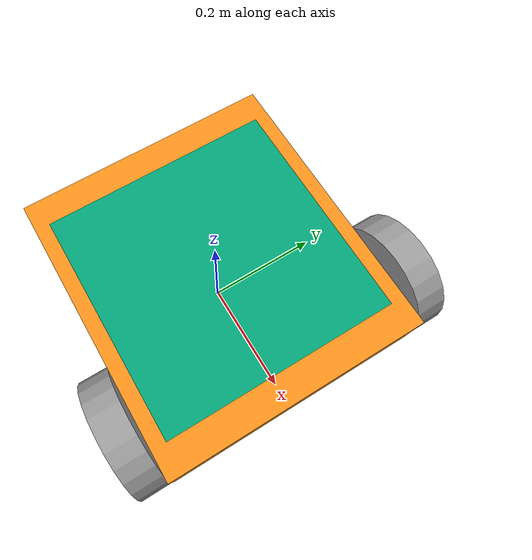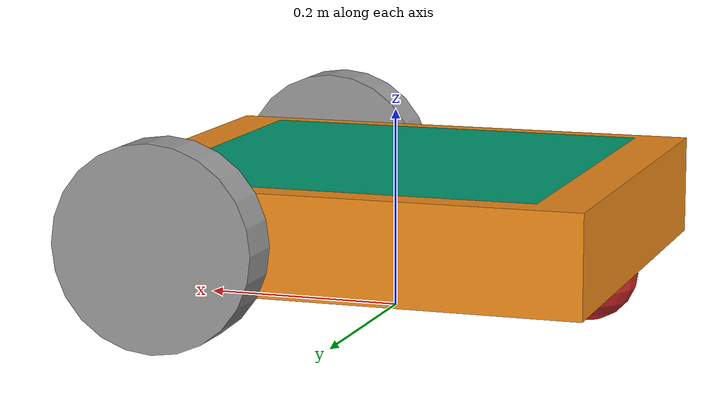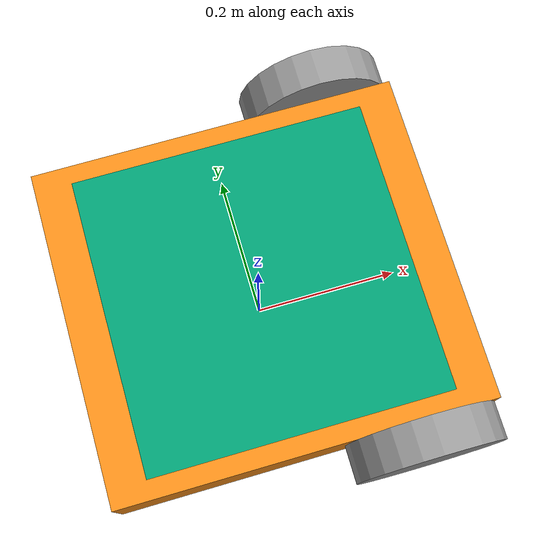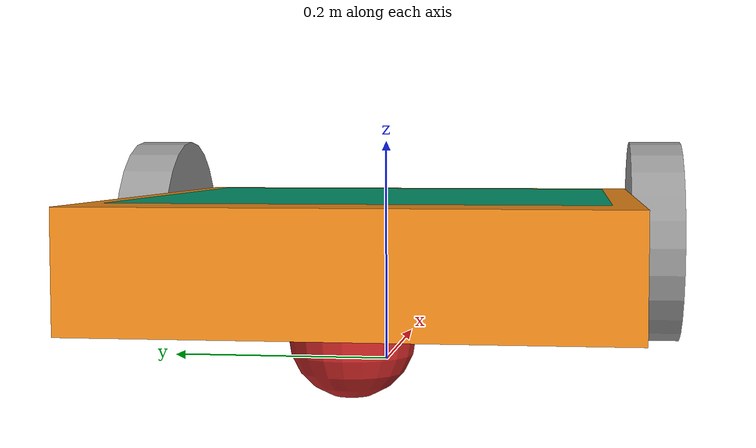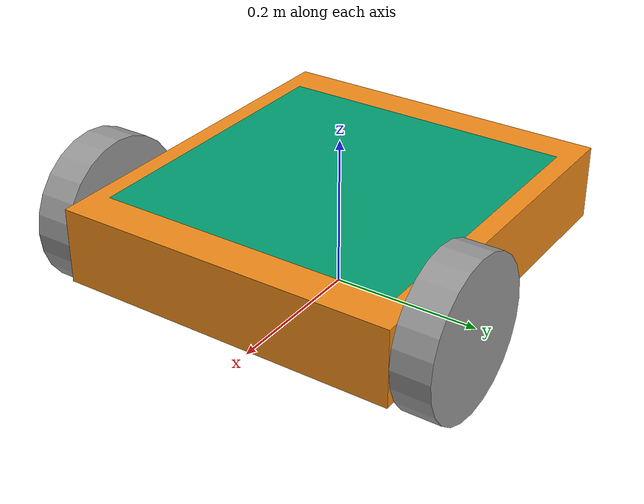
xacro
<?xml version="1.0"?>
<robot name="diff_wheeled_UGV" xmlns:xacro="http://www.ros.org/wiki/xacro">

  <xacro:property name="PI" value="3.1415926535897931"/>
  <xacro:property name="chassisHeight" value="0.1"/>
  <xacro:property name="chassisLength" value="0.5"/>
  <xacro:property name="chassisWidth" value="0.45"/>
  <xacro:property name="chassisMass" value="10"/>
  <xacro:property name="casterRadius" value="0.05"/>
  <xacro:property name="casterMass" value="5"/>
  <xacro:property name="wheelWidth" value="0.05"/>
  <xacro:property name="wheelRadius" value="0.1"/>
  <xacro:property name="wheelPos" value="0.1"/>
  <xacro:property name="wheelMass" value="1"/>
  <xacro:property name="cameraSize" value="0.05"/>
  <xacro:property name="cameraMass" value="0.1"/>

  <macro name="cylinder_inertia" params="m r h">
    <inertia  ixx="${m*(3*r*r+h*h)/12}" ixy = "0" ixz = "0"
              iyy="${m*(3*r*r+h*h)/12}" iyz = "0"
              izz="${m*r*r/2}" />
  </macro>

  <macro name="box_inertia" params="m x y z">
    <inertia  ixx="${m*(y*y+z*z)/12}" ixy = "0" ixz = "0"
              iyy="${m*(x*x+z*z)/12}" iyz = "0"
              izz="${m*(x*x+z*z)/12}" />
  </macro>

  <macro name="sphere_inertia" params="m r">
    <inertia  ixx="${2*m*r*r/5}" ixy = "0" ixz = "0"
              iyy="${2*m*r*r/5}" iyz = "0"
              izz="${2*m*r*r/5}" />
  </macro>

  <macro name="wheel" params="lr tY">

    <joint name="${lr}_wheel_hinge" type="continuous">
      <parent link="chassis"/>
      <child link="${lr}_wheel"/>
      <origin xyz="${-wheelPos+chassisLength/2} ${tY*wheelWidth/2+tY*chassisWidth/2} ${wheelRadius}" rpy="0 0 0" />
      <axis xyz="0 1 0" rpy="0 0 0" />
      <limit effort="100" velocity="100"/>
      <joint_properties damping="0.0" friction="0.0"/>
    </joint>

    <link name="${lr}_wheel">
      <collision>
        <origin xyz="0 0 0" rpy="0 ${PI/2} ${PI/2}" />
        <geometry>
          <cylinder length="${wheelWidth}" radius="${wheelRadius}"/>
        </geometry>
      </collision>

      <visual>
        <origin xyz="0 0 0" rpy="0 ${PI/2} ${PI/2}" />
        <geometry>
          <cylinder length="${wheelWidth}" radius="${wheelRadius}"/>
        </geometry>
      </visual>

      <inertial>
        <origin xyz="0 0 0" rpy="0 ${PI/2} ${PI/2}" />
        <mass value="${wheelMass}"/>
        <cylinder_inertia m="${wheelMass}" r="${wheelRadius}" h="${wheelWidth}"/>
      </inertial>
    </link>

    <gazebo reference="${lr}_wheel">
      <material>Gazebo/Grey</material>
    </gazebo>

    <transmission name="${lr}_trans">
      <type>transmission_interface/SimpleTransmission</type>
      <joint name="${lr}_wheel_hinge"><hardwareInterface>EffortJointInterface</hardwareInterface></joint>
      <actuator name="front_${lr}_wheel_joint_motor">
        <hardwareInterface>EffortJointInterface</hardwareInterface>
        <mechanicalReduction>1</mechanicalReduction>
      </actuator>
    </transmission>

  </macro>

  <link name="footprint" />

  <joint name="base_joint" type="fixed">
    <parent link="footprint"/>
    <child link="chassis"/>
  </joint>

  <link name='chassis'>
    <collision>
      <origin xyz="0 0 ${wheelRadius}" rpy="0 0 0"/>
      <geometry>
        <box size="${chassisLength} ${chassisWidth} ${chassisHeight}"/>
      </geometry>
    </collision>
    <visual>
      <origin xyz="0 0 ${wheelRadius}" rpy="0 0 0"/>
        <geometry>
          <box size="${chassisLength} ${chassisWidth} ${chassisHeight}"/>
        </geometry>
    </visual>
    <inertial>
      <origin xyz="0 0 ${wheelRadius}" rpy="0 0 0"/>
      <mass value="${chassisMass}"/>
      <box_inertia m="${chassisMass}" x="${chassisLength}" y="${chassisWidth}" z="${chassisHeight}"/>
    </inertial>
  </link>
  <gazebo reference="chassis">
    <material>Gazebo/Orange</material>
  </gazebo>

  <joint name="marker_joint" type="fixed">
    <origin xyz="0 0 ${wheelRadius+chassisHeight*0.51}" rpy="0 0 0"/>
    <parent link="chassis"/>
    <child link="marker"/>
  </joint>

  <link name="marker">
    <visual name="visual">
      <origin xyz="0 0 0" rpy="0 0 0" />
      <geometry>
        <mesh filename="package://tud_firefly_description/meshes/markers/aruco_76.dae" scale="0.4 0.4 0.4" />
      </geometry>
    </visual>
  </link>

  <joint name="fixed" type="fixed">
    <parent link="chassis"/>
    <child link="caster_wheel"/>
  </joint>

  <link name="caster_wheel">
    <collision>
      <origin xyz="${casterRadius-chassisLength/2} 0 ${casterRadius-chassisHeight+wheelRadius}" rpy="0 0 0"/>
      <geometry>
        <sphere radius="${casterRadius}"/>
      </geometry>
    </collision>

    <visual>
      <origin xyz="${casterRadius-chassisLength/2} 0 ${casterRadius-chassisHeight+wheelRadius}" rpy="0 0 0"/>
      <geometry>
        <sphere radius="${casterRadius}"/>
      </geometry>
    </visual>

    <inertial>
      <origin xyz="${casterRadius-chassisLength/2} 0 ${casterRadius-chassisHeight+wheelRadius}" rpy="0 0 0"/>
      <mass value="${casterMass}"/>
      <sphere_inertia m="${casterMass}" r="${casterRadius}"/>
    </inertial>
  </link>
  <gazebo reference="caster_wheel">
    <mu1>0.0</mu1>
    <mu2>0.0</mu2>
    <material>Gazebo/Red</material>
  </gazebo>

  <wheel lr="left" tY="-1"/>
  <wheel lr="right" tY="1"/>

  <gazebo>
    <plugin name="differential_drive_controller" filename="libgazebo_ros_diff_drive.so">
      <rosDebugLevel>Debug</rosDebugLevel>
      <publishWheelTF>false</publishWheelTF>
      <robotNamespace>/</robotNamespace>
      <publishTf>1</publishTf>
      <publishWheelJointState>false</publishWheelJointState>
      <alwaysOn>true</alwaysOn>
      <updateRate>100</updateRate>
      <leftJoint>left_wheel_hinge</leftJoint>
      <rightJoint>right_wheel_hinge</rightJoint>
      <wheelSeparation>${chassisWidth+wheelWidth}</wheelSeparation>
      <wheelDiameter>${2*wheelRadius}</wheelDiameter>
      <broadcastTF>1</broadcastTF>
      <wheelTorque>30</wheelTorque>
      <wheelAcceleration>1.8</wheelAcceleration>
      <commandTopic>cmd_vel</commandTopic>
      <odometryTopic>/firefly/UGV_odometry</odometryTopic>
      <odometryFrame>world</odometryFrame>
      <robotBaseFrame>footprint</robotBaseFrame>
    </plugin>
  </gazebo>

</robot>
